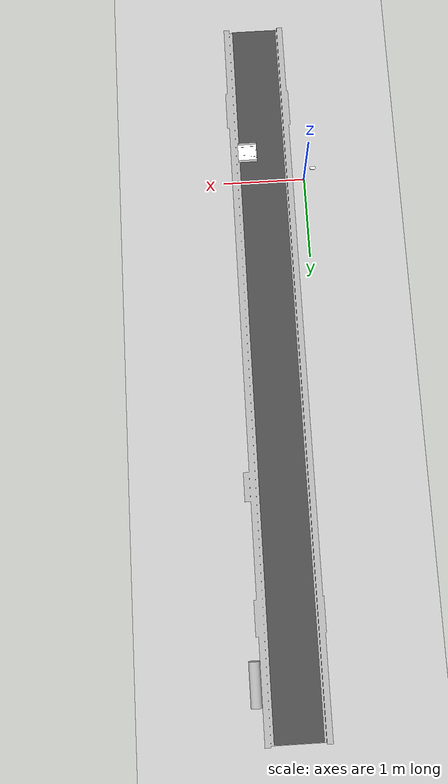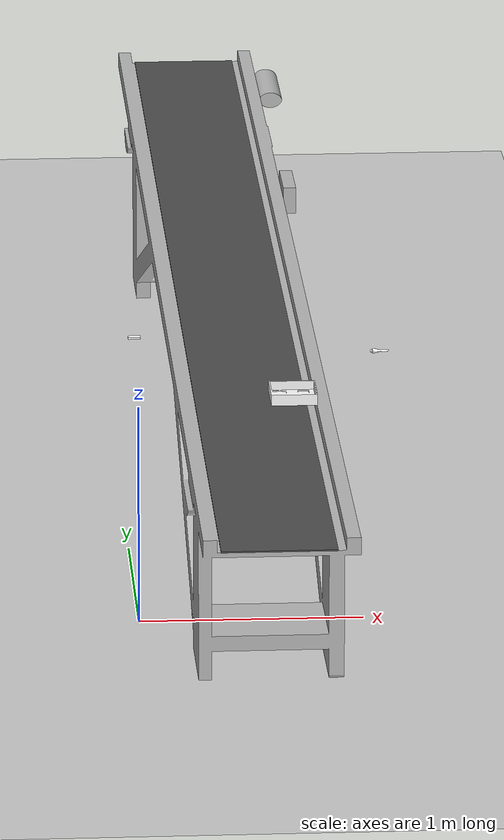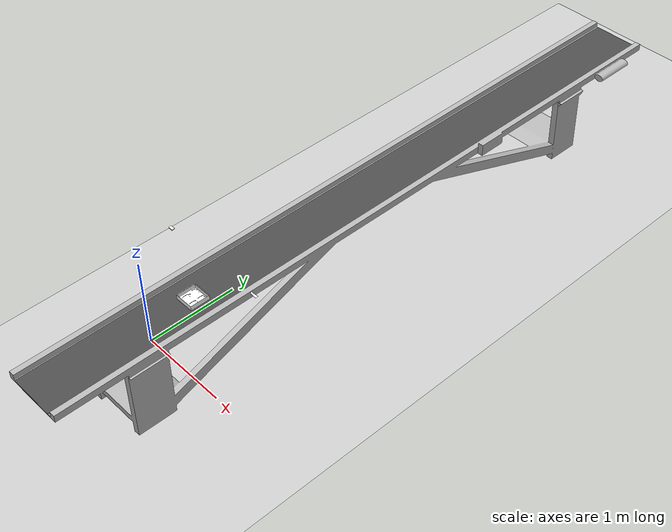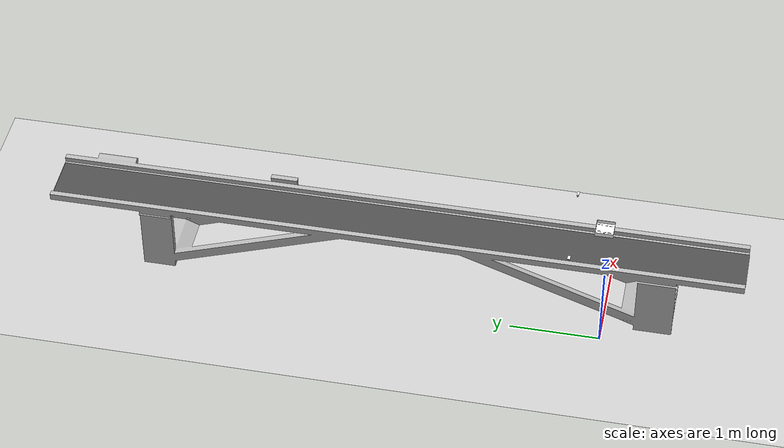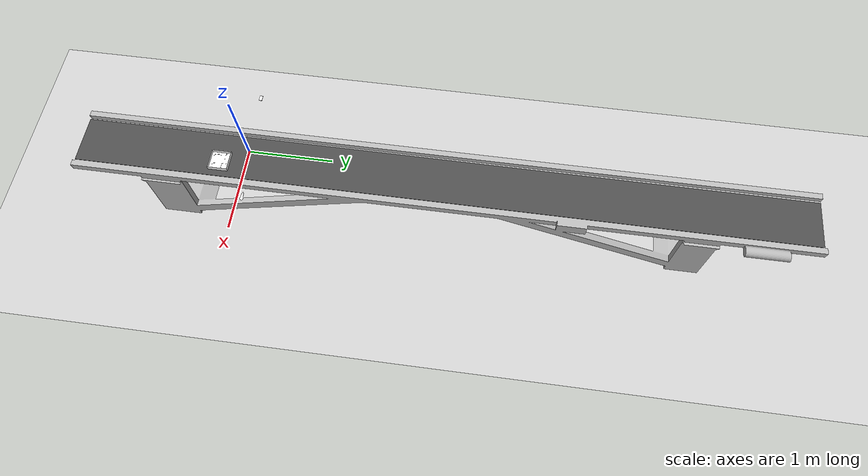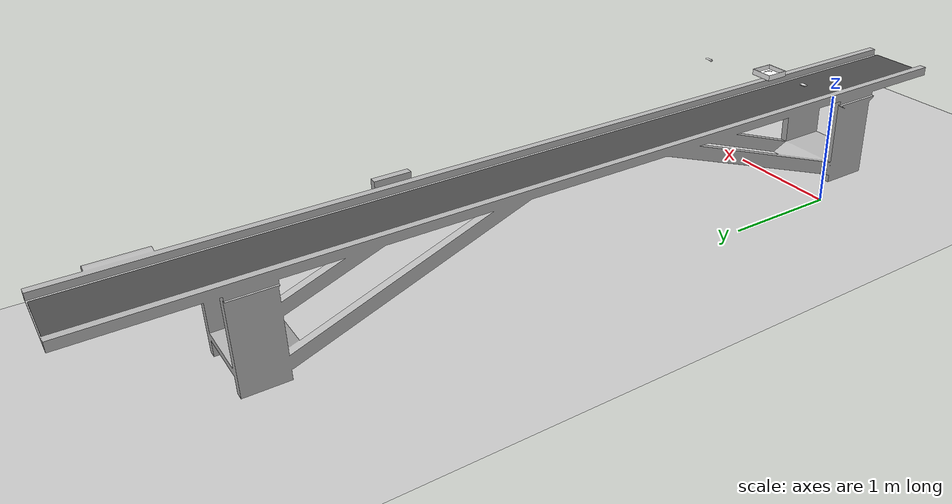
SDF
<sdf version="1.6">
 <world name="default">
  <include><uri>model://ground_plane</uri></include>
  <include><uri>model://sun</uri></include>
  <include><uri>model://conveyor</uri><pose>0.8 -0.5 -0.09 0 0 0</pose></include>
  <include><uri>model://box</uri><pose>0.6 0 1 0 0 0</pose><name>box0</name></include>
  <include><uri>model://toothpaste</uri><name>toothpaste</name><pose>1.1 0.45 1.1 0 0 0</pose></include>
  <include><uri>model://soap_bar</uri><name>soap</name><pose>0.0 0.4 1.2 0 0 0</pose></include>
  <physics type="ode">
   <max_step_size>0.001000</max_step_size>
   <real_time_factor>1.000000</real_time_factor>
   <real_time_update_rate>1000.0</real_time_update_rate>
  </physics>
  <gravity>0.0 0.0 -9.81</gravity>
  <plugin name="ros_link_attacher_plugin" filename="libgazebo_ros_link_attacher.so"/>
 </world>
</sdf>

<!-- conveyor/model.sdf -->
<sdf version='1.6'>
  <model name='conveyor'>
    <link name='body'>
      <self_collide>0</self_collide>
      <enable_wind>0</enable_wind>
      <kinematic>0</kinematic>
      <pose frame=''>0 0 0 0 -0 0</pose>
      <gravity>1</gravity>
      <inertial>
        <mass>10</mass>
        <pose frame=''>0 0 0 0 -0 0</pose>
        <inertia>
          <ixx>1</ixx>
          <ixy>0</ixy>
          <ixz>0</ixz>
          <iyy>1</iyy>
          <iyz>0</iyz>
          <izz>1</izz>
        </inertia>
      </inertial>
      <visual name='visual'>
        <geometry>
          <mesh>
            <uri>model://conveyor/conveyor.stl</uri>
            <scale>0.9 1.7 0.68</scale>
          </mesh>
        </geometry>
        <pose frame=''>-0.6 -1 0.9 0 -0 0</pose>
        <transparency>0</transparency>
        <cast_shadows>1</cast_shadows>
      </visual>
    </link>

    <link name='belt'>
      <pose frame=''>-0.27 2.88 0.925 0 -0 1.57</pose>
      <inertial>
        <inertia>
          <ixx>3.8185</ixx>
          <ixy>0</ixy>
          <ixz>0</ixz>
          <iyy>1781.5</iyy>
          <iyz>0</iyz>
          <izz>1784.72</izz>
        </inertia>
        <mass>10</mass>
      </inertial>
      <visual name='belt_collision'>
        <geometry>
          <box>
            <size>7.77 0.5 0.006</size>
          </box>
        </geometry>
        <material>
          <script>
            <uri>file://media/materials/scripts/gazebo.material</uri>
            <name>Gazebo/DarkGrey</name>
          </script>
        </material>
      </visual>
      <collision name='belt_collision'>
        <geometry>
          <box>
            <size>10 0.5 0.006</size>
          </box>
        </geometry>
        <surface>
          <friction>
            <ode>
              <mu>1</mu>
              <mu2>1</mu2>
            </ode>
            <torsional>
              <coefficient>1000</coefficient>
              <patch_radius>0.1</patch_radius>
              <ode/>
            </torsional>
          </friction>
          <contact>
            <ode/>
          </contact>
          <bounce/>
        </surface>
        <max_contacts>10</max_contacts>
      </collision>
      <self_collide>0</self_collide>
      <enable_wind>0</enable_wind>
      <kinematic>0</kinematic>
    </link>

    <joint name='belt_joint' type='fixed'>
      <parent>body</parent>
      <child>belt</child>
      <pose frame=''>0 0 0 0 -0 0</pose>
      <axis>
        <xyz>1 0 0</xyz>
        <use_parent_model_frame>0</use_parent_model_frame>
        <limit>
          <lower>0</lower>
          <upper>1</upper>
          <effort>-1</effort>
          <velocity>-1</velocity>
        </limit>
        <dynamics>
          <spring_reference>0</spring_reference>
          <spring_stiffness>0</spring_stiffness>
          <damping>0</damping>
          <friction>0</friction>
        </dynamics>
      </axis>
      <physics>
        <ode>
          <limit>
            <cfm>0</cfm>
            <erp>0.2</erp>
          </limit>
          <suspension>
            <cfm>0</cfm>
            <erp>0.2</erp>
          </suspension>
        </ode>
      </physics>
    </joint>

    <static>1</static>
    <allow_auto_disable>1</allow_auto_disable>
  </model>
</sdf>

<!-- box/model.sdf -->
<sdf version='1.6'>
  <model name='box'>
    <link name='body'>
      <self_collide>0</self_collide>
      <enable_wind>0</enable_wind>
      <kinematic>0</kinematic>
      <pose frame=''>0 0 0 0 -0 0</pose>
      <gravity>1</gravity>
      <inertial>
        <mass>1</mass>
        <pose frame=''>0 0 0 0 -0 0</pose>
        <inertia>
          <ixx>1</ixx>
          <ixy>0</ixy>
          <ixz>0</ixz>
          <iyy>1</iyy>
          <iyz>0</iyz>
          <izz>1</izz>
        </inertia>
      </inertial>
      <visual name='visual'>
        <geometry>
          <mesh>
            <uri>model://box/box.stl</uri>
            <scale>1 1 1</scale>
          </mesh>
        </geometry>
        <material>
          <script>
            <uri>model://box/materials/scripts</uri>
            <uri>model://box/materials/textures</uri>
            <name>boxcolor</name>
          </script>
          <shader type='vertex'>
            <normal_map>__default__</normal_map>
          </shader>
          <ambient>1 1 1 1</ambient>
          <diffuse>1 1 1 1</diffuse>
          <specular>0 0 0 1</specular>
          <emissive>0 0 0 1</emissive>
        </material>
        <pose frame=''>0.0 0.0 0 0 -0 0</pose>
        <transparency>0</transparency>
        <cast_shadows>1</cast_shadows>
      </visual>
      <collision name='collision_0'>
        <laser_retro>0</laser_retro>
        <max_contacts>10</max_contacts>
        <pose frame=''>0.09 0.09 0.003 0 -0 0</pose>
        <geometry>
          <box>
            <size>0.205 0.205 0.005</size>
          </box>
        </geometry>
        <surface>
          <friction>
            <ode>
              <mu>1</mu>
              <mu2>1</mu2>
              <fdir1>0 0 0</fdir1>
              <slip1>0</slip1>
              <slip2>0</slip2>
            </ode>
            <torsional>
              <coefficient>1</coefficient>
              <patch_radius>0</patch_radius>
              <surface_radius>0</surface_radius>
              <use_patch_radius>1</use_patch_radius>
              <ode>
                <slip>0</slip>
              </ode>
            </torsional>
          </friction>
          <bounce>
            <restitution_coefficient>0</restitution_coefficient>
            <threshold>1e+06</threshold>
          </bounce>
          <contact>
            <collide_without_contact>0</collide_without_contact>
            <collide_without_contact_bitmask>1</collide_without_contact_bitmask>
            <collide_bitmask>1</collide_bitmask>
            <ode>
              <soft_cfm>0</soft_cfm>
              <soft_erp>0.2</soft_erp>
              <kp>1e+13</kp>
              <kd>1</kd>
              <max_vel>0.01</max_vel>
              <min_depth>0</min_depth>
            </ode>
            <bullet>
              <split_impulse>1</split_impulse>
              <split_impulse_penetration_threshold>-0.01</split_impulse_penetration_threshold>
              <soft_cfm>0</soft_cfm>
              <soft_erp>0.2</soft_erp>
              <kp>1e+13</kp>
              <kd>1</kd>
            </bullet>
          </contact>
        </surface>
      </collision>
    </link>
    <static>0</static>
    <allow_auto_disable>1</allow_auto_disable>
  </model>
</sdf>

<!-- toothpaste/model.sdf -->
<sdf version='1.6'>
  <model name='toothpaste'>
    <link name='link'>
      <self_collide>0</self_collide>
      <enable_wind>0</enable_wind>
      <kinematic>0</kinematic>
      <pose frame=''>0 0 0 0 -0 0</pose>
      <gravity>1</gravity>
      <inertial>
        <mass>0.01</mass>
        <pose frame=''>0 0 0 0 -0 0</pose>
        <inertia>
          <ixx>1</ixx>
          <ixy>0</ixy>
          <ixz>0</ixz>
          <iyy>1</iyy>
          <iyz>0</iyz>
          <izz>1</izz>
        </inertia>
      </inertial>
      <visual name='visual'>
        <geometry>
          <mesh>
            <uri>model://toothpaste/model.dae</uri>
            <scale>0.5 0.6 0.7</scale>
          </mesh>
        </geometry>
        <material>
          <script>
            <uri>model://toothpaste/materials/scripts</uri>
            <uri>model://toothpaste/materials/textures</uri>
            <name>toothpastecolor</name>
          </script>
          <shader type='vertex'>
            <normal_map>__default__</normal_map>
          </shader>
          <ambient>1 1 1 1</ambient>
          <diffuse>1 1 1 1</diffuse>
          <specular>0 0 0 1</specular>
          <emissive>0 0 0 1</emissive>
        </material>
        <pose frame=''>-0.005 0 -0.011 0 -0 0</pose>
        <transparency>0</transparency>
        <cast_shadows>1</cast_shadows>
      </visual>
      <collision name='collision_0'>
        <laser_retro>0</laser_retro>
        <max_contacts>10</max_contacts>
        <pose frame=''>0 0 0 0 -0 0</pose>
        <geometry>
          <box>
            <size>0.084 0.02 0.018</size>
          </box>
        </geometry>
        <surface>
          <friction>
            <ode>
              <mu>1</mu>
              <mu2>1</mu2>
            </ode>
            <torsional>
              <coefficient>1</coefficient>
              <patch_radius>0</patch_radius>
              <surface_radius>0</surface_radius>
              <use_patch_radius>1</use_patch_radius>
              <ode>
                <slip>0</slip>
              </ode>
            </torsional>
          </friction>
          <bounce>
            <restitution_coefficient>0</restitution_coefficient>
            <threshold>1e+06</threshold>
          </bounce>
          <contact>
            <collide_without_contact>0</collide_without_contact>
            <collide_without_contact_bitmask>1</collide_without_contact_bitmask>
            <collide_bitmask>1</collide_bitmask>
            <ode>
              <soft_cfm>0</soft_cfm>
              <soft_erp>0.2</soft_erp>
              <kp>1e+13</kp>
              <kd>1</kd>
              <max_vel>0.01</max_vel>
              <min_depth>0</min_depth>
            </ode>
            <bullet>
              <split_impulse>1</split_impulse>
              <split_impulse_penetration_threshold>-0.01</split_impulse_penetration_threshold>
              <soft_cfm>0</soft_cfm>
              <soft_erp>0.2</soft_erp>
              <kp>1e+13</kp>
              <kd>1</kd>
            </bullet>
          </contact>
        </surface>
      </collision>
    </link>
    <allow_auto_disable>1</allow_auto_disable>
  </model>
</sdf>

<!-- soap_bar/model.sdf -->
<sdf version='1.6'>
  <model name='soap_bar'>
    <link name='link'>
      <inertial>
        <mass>0.01</mass>
        <inertia>
          <ixx>0.166667</ixx>
          <ixy>0</ixy>
          <ixz>0</ixz>
          <iyy>0.166667</iyy>
          <iyz>0</iyz>
          <izz>0.166667</izz>
        </inertia>
        <pose frame=''>0 0 0 0 -0 0</pose>
      </inertial>
      <self_collide>0</self_collide>
      <enable_wind>0</enable_wind>
      <kinematic>0</kinematic>
      <pose frame=''>0 0 0 0 -0 0</pose>
      <gravity>1</gravity>
      <visual name='visual'>
        <geometry>
          <box>
            <size>0.055 0.031 0.008</size>
          </box>
        </geometry>
        <material>
          <script>
            <uri>model://soap_bar/materials/scripts</uri>
            <uri>model://soap_bar/materials/textures</uri>
            <name>soapcolor</name>
          </script>

          <ambient>1 1 1 1</ambient>
          <diffuse>1 1 1 1</diffuse>
          <specular>1 1 1 1</specular>
          <emissive>0 0 0 1</emissive>

        </material>
        <pose frame=''>0 0 0 0 -0 0</pose>
        <transparency>0</transparency>
        <cast_shadows>1</cast_shadows>
      </visual>
      <collision name='collision'>
        <laser_retro>0</laser_retro>
        <max_contacts>10</max_contacts>
        <pose frame=''>0 0 0 0 -0 0</pose>
        <geometry>
          <box>
            <size>0.055 0.031 0.008</size>
          </box>
        </geometry>
        <surface>
          <friction>
            <ode>
              <mu>1</mu>
              <mu2>1</mu2>
              <fdir1>0 0 0</fdir1>
              <slip1>0</slip1>
              <slip2>0</slip2>
            </ode>
            <torsional>
              <coefficient>1</coefficient>
              <patch_radius>0</patch_radius>
              <surface_radius>0</surface_radius>
              <use_patch_radius>1</use_patch_radius>
              <ode>
                <slip>0</slip>
              </ode>
            </torsional>
          </friction>
          <bounce>
            <restitution_coefficient>0</restitution_coefficient>
            <threshold>1e+06</threshold>
          </bounce>
          <contact>
            <collide_without_contact>0</collide_without_contact>
            <collide_without_contact_bitmask>1</collide_without_contact_bitmask>
            <collide_bitmask>1</collide_bitmask>
            <ode>
              <soft_cfm>0</soft_cfm>
              <soft_erp>0.2</soft_erp>
              <kp>1e+13</kp>
              <kd>1</kd>
              <max_vel>0.01</max_vel>
              <min_depth>0</min_depth>
            </ode>
            <bullet>
              <split_impulse>1</split_impulse>
              <split_impulse_penetration_threshold>-0.01</split_impulse_penetration_threshold>
              <soft_cfm>0</soft_cfm>
              <soft_erp>0.2</soft_erp>
              <kp>1e+13</kp>
              <kd>1</kd>
            </bullet>
          </contact>
        </surface>
      </collision>
    </link>
    <static>0</static>
    <allow_auto_disable>1</allow_auto_disable>
  </model>
</sdf>
